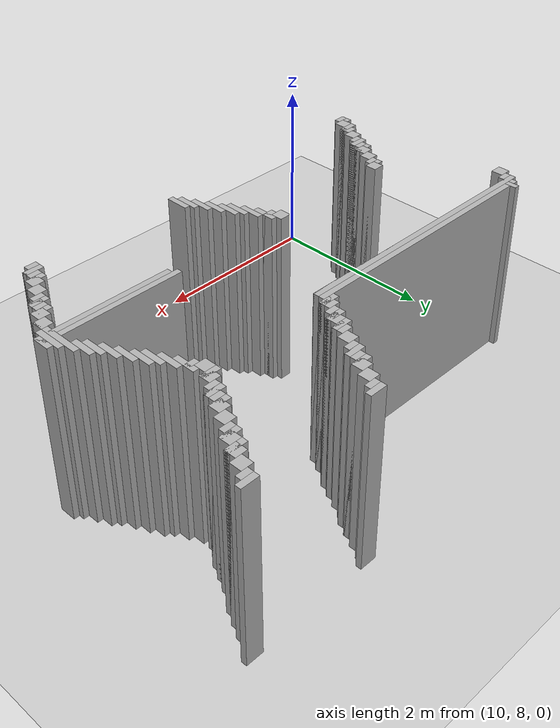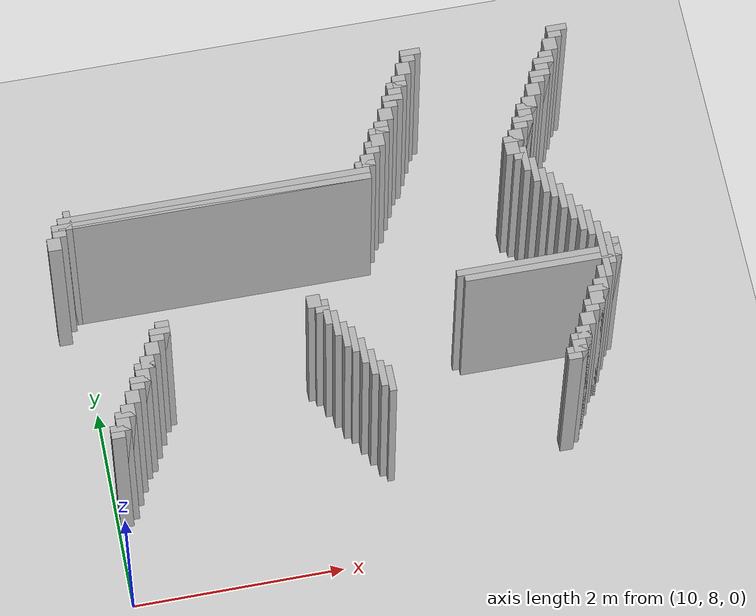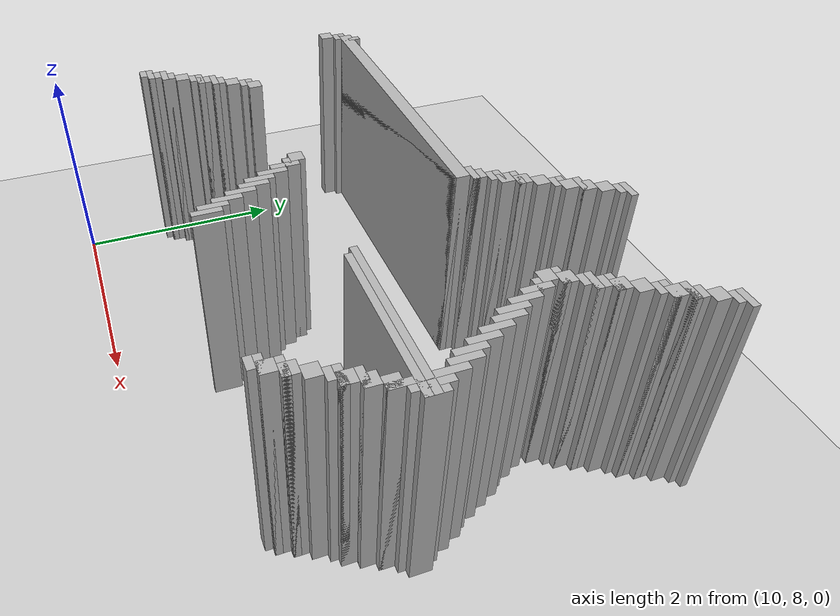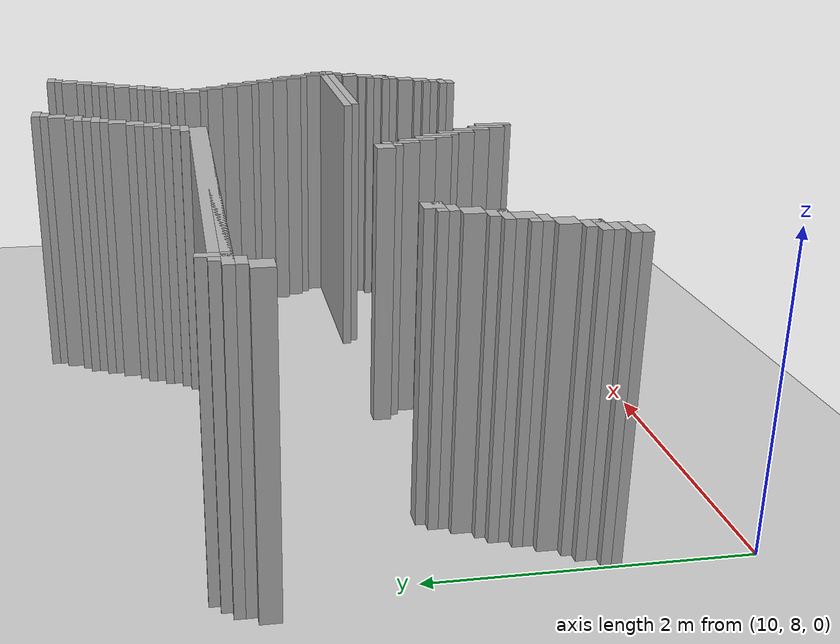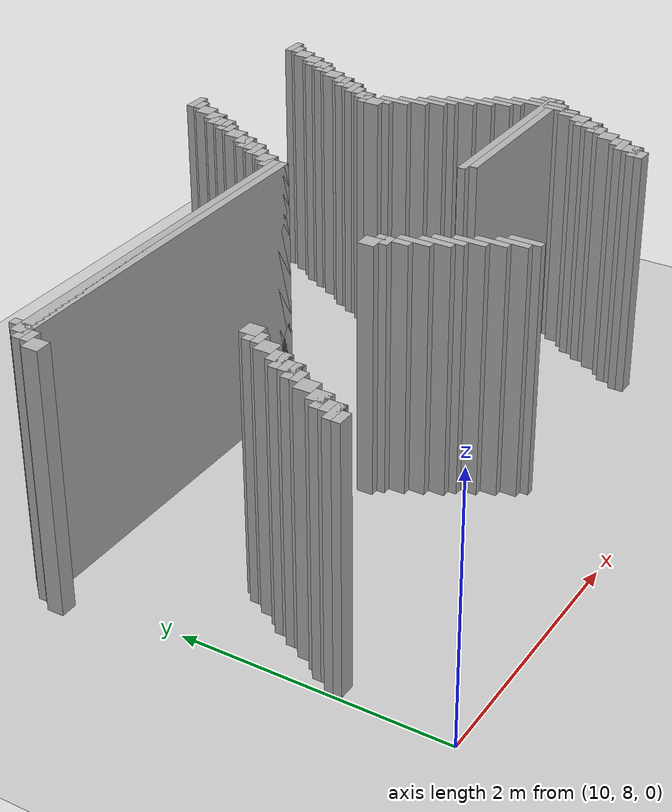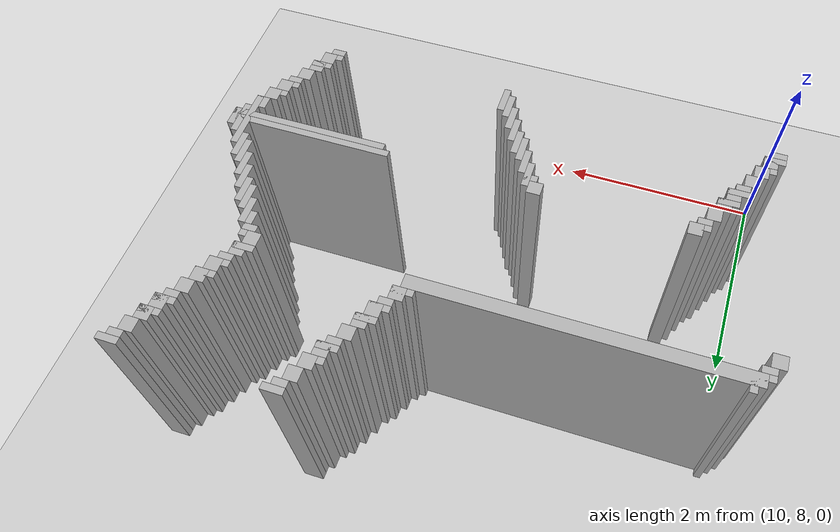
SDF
<sdf version="1.6">
 <world name="slam_world">
  <model name="ground_plane">
   <static>true</static>
   <link name="link">
    <collision name="collision">
     <geometry><plane><normal>0 0 1</normal><size>100 100</size></plane></geometry>
    </collision>
    <visual name="visual">
     <geometry><plane><normal>0 0 1</normal><size>100 100</size></plane></geometry>
     <material>
      <ambient>0.8 0.8 0.8 1</ambient>
      <diffuse>0.8 0.8 0.8 1</diffuse>
      <specular>0.8 0.8 0.8 1</specular>
     </material>
    </visual>
   </link>
  </model>
  <model name="wall_1170">
   <static>true</static>
   <pose>13.436170212765957 12.223404255319148 1.0 0 0 0</pose>
   <link name="link">
    <collision name="collision">
     <geometry><box><size>0.19148936170212766 0.06382978723404255 2.0</size></box></geometry>
    </collision>
    <visual name="visual">
     <geometry><box><size>0.19148936170212766 0.06382978723404255 2.0</size></box></geometry>
     <material><ambient>0.5 0.5 0.5 1</ambient><diffuse>0.7 0.7 0.7 1</diffuse></material>
    </visual>
   </link>
  </model>
  <model name="wall_1171">
   <static>true</static>
   <pose>14.840425531914892 12.223404255319148 1.0 0 0 0</pose>
   <link name="link">
    <collision name="collision">
     <geometry><box><size>0.19148936170212766 0.06382978723404255 2.0</size></box></geometry>
    </collision>
    <visual name="visual">
     <geometry><box><size>0.19148936170212766 0.06382978723404255 2.0</size></box></geometry>
     <material><ambient>0.5 0.5 0.5 1</ambient><diffuse>0.7 0.7 0.7 1</diffuse></material>
    </visual>
   </link>
  </model>
  <model name="wall_1176">
   <static>true</static>
   <pose>13.404255319148936 12.159574468085106 1.0 0 0 0</pose>
   <link name="link">
    <collision name="collision">
     <geometry><box><size>0.1276595744680851 0.06382978723404255 2.0</size></box></geometry>
    </collision>
    <visual name="visual">
     <geometry><box><size>0.1276595744680851 0.06382978723404255 2.0</size></box></geometry>
     <material><ambient>0.5 0.5 0.5 1</ambient><diffuse>0.7 0.7 0.7 1</diffuse></material>
    </visual>
   </link>
  </model>
  <model name="wall_1177">
   <static>true</static>
   <pose>14.808510638297872 12.159574468085106 1.0 0 0 0</pose>
   <link name="link">
    <collision name="collision">
     <geometry><box><size>0.1276595744680851 0.06382978723404255 2.0</size></box></geometry>
    </collision>
    <visual name="visual">
     <geometry><box><size>0.1276595744680851 0.06382978723404255 2.0</size></box></geometry>
     <material><ambient>0.5 0.5 0.5 1</ambient><diffuse>0.7 0.7 0.7 1</diffuse></material>
    </visual>
   </link>
  </model>
  <model name="wall_1185">
   <static>true</static>
   <pose>13.340425531914892 12.063829787234042 1.0 0 0 0</pose>
   <link name="link">
    <collision name="collision">
     <geometry><box><size>0.1276595744680851 0.1276595744680851 2.0</size></box></geometry>
    </collision>
    <visual name="visual">
     <geometry><box><size>0.1276595744680851 0.1276595744680851 2.0</size></box></geometry>
     <material><ambient>0.5 0.5 0.5 1</ambient><diffuse>0.7 0.7 0.7 1</diffuse></material>
    </visual>
   </link>
  </model>
  <model name="wall_1186">
   <static>true</static>
   <pose>14.744680851063828 12.063829787234042 1.0 0 0 0</pose>
   <link name="link">
    <collision name="collision">
     <geometry><box><size>0.1276595744680851 0.1276595744680851 2.0</size></box></geometry>
    </collision>
    <visual name="visual">
     <geometry><box><size>0.1276595744680851 0.1276595744680851 2.0</size></box></geometry>
     <material><ambient>0.5 0.5 0.5 1</ambient><diffuse>0.7 0.7 0.7 1</diffuse></material>
    </visual>
   </link>
  </model>
  <model name="wall_1194">
   <static>true</static>
   <pose>13.27659574468085 11.936170212765957 1.0 0 0 0</pose>
   <link name="link">
    <collision name="collision">
     <geometry><box><size>0.1276595744680851 0.1276595744680851 2.0</size></box></geometry>
    </collision>
    <visual name="visual">
     <geometry><box><size>0.1276595744680851 0.1276595744680851 2.0</size></box></geometry>
     <material><ambient>0.5 0.5 0.5 1</ambient><diffuse>0.7 0.7 0.7 1</diffuse></material>
    </visual>
   </link>
  </model>
  <model name="wall_1195">
   <static>true</static>
   <pose>14.680851063829786 11.936170212765957 1.0 0 0 0</pose>
   <link name="link">
    <collision name="collision">
     <geometry><box><size>0.1276595744680851 0.1276595744680851 2.0</size></box></geometry>
    </collision>
    <visual name="visual">
     <geometry><box><size>0.1276595744680851 0.1276595744680851 2.0</size></box></geometry>
     <material><ambient>0.5 0.5 0.5 1</ambient><diffuse>0.7 0.7 0.7 1</diffuse></material>
    </visual>
   </link>
  </model>
  <model name="wall_1203">
   <static>true</static>
   <pose>13.244680851063828 11.904255319148936 1.0 0 0 0</pose>
   <link name="link">
    <collision name="collision">
     <geometry><box><size>0.19148936170212766 0.06382978723404255 2.0</size></box></geometry>
    </collision>
    <visual name="visual">
     <geometry><box><size>0.19148936170212766 0.06382978723404255 2.0</size></box></geometry>
     <material><ambient>0.5 0.5 0.5 1</ambient><diffuse>0.7 0.7 0.7 1</diffuse></material>
    </visual>
   </link>
  </model>
  <model name="wall_1204">
   <static>true</static>
   <pose>14.648936170212766 11.904255319148936 1.0 0 0 0</pose>
   <link name="link">
    <collision name="collision">
     <geometry><box><size>0.19148936170212766 0.06382978723404255 2.0</size></box></geometry>
    </collision>
    <visual name="visual">
     <geometry><box><size>0.19148936170212766 0.06382978723404255 2.0</size></box></geometry>
     <material><ambient>0.5 0.5 0.5 1</ambient><diffuse>0.7 0.7 0.7 1</diffuse></material>
    </visual>
   </link>
  </model>
  <model name="wall_1208">
   <static>true</static>
   <pose>13.212765957446807 11.808510638297872 1.0 0 0 0</pose>
   <link name="link">
    <collision name="collision">
     <geometry><box><size>0.1276595744680851 0.1276595744680851 2.0</size></box></geometry>
    </collision>
    <visual name="visual">
     <geometry><box><size>0.1276595744680851 0.1276595744680851 2.0</size></box></geometry>
     <material><ambient>0.5 0.5 0.5 1</ambient><diffuse>0.7 0.7 0.7 1</diffuse></material>
    </visual>
   </link>
  </model>
  <model name="wall_1209">
   <static>true</static>
   <pose>14.617021276595743 11.808510638297872 1.0 0 0 0</pose>
   <link name="link">
    <collision name="collision">
     <geometry><box><size>0.1276595744680851 0.1276595744680851 2.0</size></box></geometry>
    </collision>
    <visual name="visual">
     <geometry><box><size>0.1276595744680851 0.1276595744680851 2.0</size></box></geometry>
     <material><ambient>0.5 0.5 0.5 1</ambient><diffuse>0.7 0.7 0.7 1</diffuse></material>
    </visual>
   </link>
  </model>
  <model name="wall_1217">
   <static>true</static>
   <pose>13.180851063829786 11.77659574468085 1.0 0 0 0</pose>
   <link name="link">
    <collision name="collision">
     <geometry><box><size>0.19148936170212766 0.06382978723404255 2.0</size></box></geometry>
    </collision>
    <visual name="visual">
     <geometry><box><size>0.19148936170212766 0.06382978723404255 2.0</size></box></geometry>
     <material><ambient>0.5 0.5 0.5 1</ambient><diffuse>0.7 0.7 0.7 1</diffuse></material>
    </visual>
   </link>
  </model>
  <model name="wall_1218">
   <static>true</static>
   <pose>14.585106382978722 11.77659574468085 1.0 0 0 0</pose>
   <link name="link">
    <collision name="collision">
     <geometry><box><size>0.19148936170212766 0.06382978723404255 2.0</size></box></geometry>
    </collision>
    <visual name="visual">
     <geometry><box><size>0.19148936170212766 0.06382978723404255 2.0</size></box></geometry>
     <material><ambient>0.5 0.5 0.5 1</ambient><diffuse>0.7 0.7 0.7 1</diffuse></material>
    </visual>
   </link>
  </model>
  <model name="wall_1221">
   <static>true</static>
   <pose>13.148936170212766 11.712765957446807 1.0 0 0 0</pose>
   <link name="link">
    <collision name="collision">
     <geometry><box><size>0.1276595744680851 0.06382978723404255 2.0</size></box></geometry>
    </collision>
    <visual name="visual">
     <geometry><box><size>0.1276595744680851 0.06382978723404255 2.0</size></box></geometry>
     <material><ambient>0.5 0.5 0.5 1</ambient><diffuse>0.7 0.7 0.7 1</diffuse></material>
    </visual>
   </link>
  </model>
  <model name="wall_1222">
   <static>true</static>
   <pose>14.553191489361701 11.712765957446807 1.0 0 0 0</pose>
   <link name="link">
    <collision name="collision">
     <geometry><box><size>0.1276595744680851 0.06382978723404255 2.0</size></box></geometry>
    </collision>
    <visual name="visual">
     <geometry><box><size>0.1276595744680851 0.06382978723404255 2.0</size></box></geometry>
     <material><ambient>0.5 0.5 0.5 1</ambient><diffuse>0.7 0.7 0.7 1</diffuse></material>
    </visual>
   </link>
  </model>
  <model name="wall_1230">
   <static>true</static>
   <pose>13.085106382978722 11.617021276595743 1.0 0 0 0</pose>
   <link name="link">
    <collision name="collision">
     <geometry><box><size>0.1276595744680851 0.1276595744680851 2.0</size></box></geometry>
    </collision>
    <visual name="visual">
     <geometry><box><size>0.1276595744680851 0.1276595744680851 2.0</size></box></geometry>
     <material><ambient>0.5 0.5 0.5 1</ambient><diffuse>0.7 0.7 0.7 1</diffuse></material>
    </visual>
   </link>
  </model>
  <model name="wall_1231">
   <static>true</static>
   <pose>14.489361702127658 11.617021276595743 1.0 0 0 0</pose>
   <link name="link">
    <collision name="collision">
     <geometry><box><size>0.1276595744680851 0.1276595744680851 2.0</size></box></geometry>
    </collision>
    <visual name="visual">
     <geometry><box><size>0.1276595744680851 0.1276595744680851 2.0</size></box></geometry>
     <material><ambient>0.5 0.5 0.5 1</ambient><diffuse>0.7 0.7 0.7 1</diffuse></material>
    </visual>
   </link>
  </model>
  <model name="wall_1239">
   <static>true</static>
   <pose>13.02127659574468 11.489361702127658 1.0 0 0 0</pose>
   <link name="link">
    <collision name="collision">
     <geometry><box><size>0.1276595744680851 0.1276595744680851 2.0</size></box></geometry>
    </collision>
    <visual name="visual">
     <geometry><box><size>0.1276595744680851 0.1276595744680851 2.0</size></box></geometry>
     <material><ambient>0.5 0.5 0.5 1</ambient><diffuse>0.7 0.7 0.7 1</diffuse></material>
    </visual>
   </link>
  </model>
  <model name="wall_1240">
   <static>true</static>
   <pose>14.425531914893616 11.489361702127658 1.0 0 0 0</pose>
   <link name="link">
    <collision name="collision">
     <geometry><box><size>0.1276595744680851 0.1276595744680851 2.0</size></box></geometry>
    </collision>
    <visual name="visual">
     <geometry><box><size>0.1276595744680851 0.1276595744680851 2.0</size></box></geometry>
     <material><ambient>0.5 0.5 0.5 1</ambient><diffuse>0.7 0.7 0.7 1</diffuse></material>
    </visual>
   </link>
  </model>
  <model name="wall_1248">
   <static>true</static>
   <pose>12.989361702127658 11.457446808510637 1.0 0 0 0</pose>
   <link name="link">
    <collision name="collision">
     <geometry><box><size>0.19148936170212766 0.06382978723404255 2.0</size></box></geometry>
    </collision>
    <visual name="visual">
     <geometry><box><size>0.19148936170212766 0.06382978723404255 2.0</size></box></geometry>
     <material><ambient>0.5 0.5 0.5 1</ambient><diffuse>0.7 0.7 0.7 1</diffuse></material>
    </visual>
   </link>
  </model>
  <model name="wall_1249">
   <static>true</static>
   <pose>14.393617021276595 11.457446808510637 1.0 0 0 0</pose>
   <link name="link">
    <collision name="collision">
     <geometry><box><size>0.19148936170212766 0.06382978723404255 2.0</size></box></geometry>
    </collision>
    <visual name="visual">
     <geometry><box><size>0.19148936170212766 0.06382978723404255 2.0</size></box></geometry>
     <material><ambient>0.5 0.5 0.5 1</ambient><diffuse>0.7 0.7 0.7 1</diffuse></material>
    </visual>
   </link>
  </model>
  <model name="wall_1252">
   <static>true</static>
   <pose>12.957446808510637 11.361702127659573 1.0 0 0 0</pose>
   <link name="link">
    <collision name="collision">
     <geometry><box><size>0.1276595744680851 0.1276595744680851 2.0</size></box></geometry>
    </collision>
    <visual name="visual">
     <geometry><box><size>0.1276595744680851 0.1276595744680851 2.0</size></box></geometry>
     <material><ambient>0.5 0.5 0.5 1</ambient><diffuse>0.7 0.7 0.7 1</diffuse></material>
    </visual>
   </link>
  </model>
  <model name="wall_1253">
   <static>true</static>
   <pose>14.361702127659573 11.361702127659573 1.0 0 0 0</pose>
   <link name="link">
    <collision name="collision">
     <geometry><box><size>0.1276595744680851 0.1276595744680851 2.0</size></box></geometry>
    </collision>
    <visual name="visual">
     <geometry><box><size>0.1276595744680851 0.1276595744680851 2.0</size></box></geometry>
     <material><ambient>0.5 0.5 0.5 1</ambient><diffuse>0.7 0.7 0.7 1</diffuse></material>
    </visual>
   </link>
  </model>
  <model name="wall_1261">
   <static>true</static>
   <pose>12.925531914893616 11.329787234042552 1.0 0 0 0</pose>
   <link name="link">
    <collision name="collision">
     <geometry><box><size>0.19148936170212766 0.06382978723404255 2.0</size></box></geometry>
    </collision>
    <visual name="visual">
     <geometry><box><size>0.19148936170212766 0.06382978723404255 2.0</size></box></geometry>
     <material><ambient>0.5 0.5 0.5 1</ambient><diffuse>0.7 0.7 0.7 1</diffuse></material>
    </visual>
   </link>
  </model>
  <model name="wall_1262">
   <static>true</static>
   <pose>14.329787234042552 11.329787234042552 1.0 0 0 0</pose>
   <link name="link">
    <collision name="collision">
     <geometry><box><size>0.19148936170212766 0.06382978723404255 2.0</size></box></geometry>
    </collision>
    <visual name="visual">
     <geometry><box><size>0.19148936170212766 0.06382978723404255 2.0</size></box></geometry>
     <material><ambient>0.5 0.5 0.5 1</ambient><diffuse>0.7 0.7 0.7 1</diffuse></material>
    </visual>
   </link>
  </model>
  <model name="wall_1265">
   <static>true</static>
   <pose>12.893617021276595 11.26595744680851 1.0 0 0 0</pose>
   <link name="link">
    <collision name="collision">
     <geometry><box><size>0.1276595744680851 0.06382978723404255 2.0</size></box></geometry>
    </collision>
    <visual name="visual">
     <geometry><box><size>0.1276595744680851 0.06382978723404255 2.0</size></box></geometry>
     <material><ambient>0.5 0.5 0.5 1</ambient><diffuse>0.7 0.7 0.7 1</diffuse></material>
    </visual>
   </link>
  </model>
  <model name="wall_1266">
   <static>true</static>
   <pose>14.297872340425531 11.26595744680851 1.0 0 0 0</pose>
   <link name="link">
    <collision name="collision">
     <geometry><box><size>0.1276595744680851 0.06382978723404255 2.0</size></box></geometry>
    </collision>
    <visual name="visual">
     <geometry><box><size>0.1276595744680851 0.06382978723404255 2.0</size></box></geometry>
     <material><ambient>0.5 0.5 0.5 1</ambient><diffuse>0.7 0.7 0.7 1</diffuse></material>
    </visual>
   </link>
  </model>
  <model name="wall_1273">
   <static>true</static>
   <pose>12.829787234042552 11.170212765957446 1.0 0 0 0</pose>
   <link name="link">
    <collision name="collision">
     <geometry><box><size>0.1276595744680851 0.1276595744680851 2.0</size></box></geometry>
    </collision>
    <visual name="visual">
     <geometry><box><size>0.1276595744680851 0.1276595744680851 2.0</size></box></geometry>
     <material><ambient>0.5 0.5 0.5 1</ambient><diffuse>0.7 0.7 0.7 1</diffuse></material>
    </visual>
   </link>
  </model>
  <model name="wall_1274">
   <static>true</static>
   <pose>14.234042553191488 11.170212765957446 1.0 0 0 0</pose>
   <link name="link">
    <collision name="collision">
     <geometry><box><size>0.1276595744680851 0.1276595744680851 2.0</size></box></geometry>
    </collision>
    <visual name="visual">
     <geometry><box><size>0.1276595744680851 0.1276595744680851 2.0</size></box></geometry>
     <material><ambient>0.5 0.5 0.5 1</ambient><diffuse>0.7 0.7 0.7 1</diffuse></material>
    </visual>
   </link>
  </model>
  <model name="wall_1280">
   <static>true</static>
   <pose>9.989361702127658 11.074468085106382 1.0 0 0 0</pose>
   <link name="link">
    <collision name="collision">
     <geometry><box><size>0.06382978723404255 0.19148936170212766 2.0</size></box></geometry>
    </collision>
    <visual name="visual">
     <geometry><box><size>0.06382978723404255 0.19148936170212766 2.0</size></box></geometry>
     <material><ambient>0.5 0.5 0.5 1</ambient><diffuse>0.7 0.7 0.7 1</diffuse></material>
    </visual>
   </link>
  </model>
  <model name="wall_1281">
   <static>true</static>
   <pose>12.797872340425531 11.138297872340425 1.0 0 0 0</pose>
   <link name="link">
    <collision name="collision">
     <geometry><box><size>0.19148936170212766 0.06382978723404255 2.0</size></box></geometry>
    </collision>
    <visual name="visual">
     <geometry><box><size>0.19148936170212766 0.06382978723404255 2.0</size></box></geometry>
     <material><ambient>0.5 0.5 0.5 1</ambient><diffuse>0.7 0.7 0.7 1</diffuse></material>
    </visual>
   </link>
  </model>
  <model name="wall_1282">
   <static>true</static>
   <pose>14.202127659574467 11.138297872340425 1.0 0 0 0</pose>
   <link name="link">
    <collision name="collision">
     <geometry><box><size>0.19148936170212766 0.06382978723404255 2.0</size></box></geometry>
    </collision>
    <visual name="visual">
     <geometry><box><size>0.19148936170212766 0.06382978723404255 2.0</size></box></geometry>
     <material><ambient>0.5 0.5 0.5 1</ambient><diffuse>0.7 0.7 0.7 1</diffuse></material>
    </visual>
   </link>
  </model>
  <model name="wall_1286">
   <static>true</static>
   <pose>11.361702127659573 11.042553191489361 1.0 0 0 0</pose>
   <link name="link">
    <collision name="collision">
     <geometry><box><size>2.936170212765957 0.1276595744680851 2.0</size></box></geometry>
    </collision>
    <visual name="visual">
     <geometry><box><size>2.936170212765957 0.1276595744680851 2.0</size></box></geometry>
     <material><ambient>0.5 0.5 0.5 1</ambient><diffuse>0.7 0.7 0.7 1</diffuse></material>
    </visual>
   </link>
  </model>
  <model name="wall_1287">
   <static>true</static>
   <pose>14.170212765957446 11.042553191489361 1.0 0 0 0</pose>
   <link name="link">
    <collision name="collision">
     <geometry><box><size>0.1276595744680851 0.1276595744680851 2.0</size></box></geometry>
    </collision>
    <visual name="visual">
     <geometry><box><size>0.1276595744680851 0.1276595744680851 2.0</size></box></geometry>
     <material><ambient>0.5 0.5 0.5 1</ambient><diffuse>0.7 0.7 0.7 1</diffuse></material>
    </visual>
   </link>
  </model>
  <model name="wall_1291">
   <static>true</static>
   <pose>11.329787234042552 11.01063829787234 1.0 0 0 0</pose>
   <link name="link">
    <collision name="collision">
     <geometry><box><size>2.9999999999999996 0.06382978723404255 2.0</size></box></geometry>
    </collision>
    <visual name="visual">
     <geometry><box><size>2.9999999999999996 0.06382978723404255 2.0</size></box></geometry>
     <material><ambient>0.5 0.5 0.5 1</ambient><diffuse>0.7 0.7 0.7 1</diffuse></material>
    </visual>
   </link>
  </model>
  <model name="wall_1292">
   <static>true</static>
   <pose>14.265957446808509 10.914893617021276 1.0 0 0 0</pose>
   <link name="link">
    <collision name="collision">
     <geometry><box><size>0.06382978723404255 0.2553191489361702 2.0</size></box></geometry>
    </collision>
    <visual name="visual">
     <geometry><box><size>0.06382978723404255 0.2553191489361702 2.0</size></box></geometry>
     <material><ambient>0.5 0.5 0.5 1</ambient><diffuse>0.7 0.7 0.7 1</diffuse></material>
    </visual>
   </link>
  </model>
  <model name="wall_1296">
   <static>true</static>
   <pose>9.893617021276595 10.946808510638297 1.0 0 0 0</pose>
   <link name="link">
    <collision name="collision">
     <geometry><box><size>0.1276595744680851 0.06382978723404255 2.0</size></box></geometry>
    </collision>
    <visual name="visual">
     <geometry><box><size>0.1276595744680851 0.06382978723404255 2.0</size></box></geometry>
     <material><ambient>0.5 0.5 0.5 1</ambient><diffuse>0.7 0.7 0.7 1</diffuse></material>
    </visual>
   </link>
  </model>
  <model name="wall_1297">
   <static>true</static>
   <pose>14.234042553191488 10.946808510638297 1.0 0 0 0</pose>
   <link name="link">
    <collision name="collision">
     <geometry><box><size>0.1276595744680851 0.06382978723404255 2.0</size></box></geometry>
    </collision>
    <visual name="visual">
     <geometry><box><size>0.1276595744680851 0.06382978723404255 2.0</size></box></geometry>
     <material><ambient>0.5 0.5 0.5 1</ambient><diffuse>0.7 0.7 0.7 1</diffuse></material>
    </visual>
   </link>
  </model>
  <model name="wall_1301">
   <static>true</static>
   <pose>9.829787234042552 10.851063829787233 1.0 0 0 0</pose>
   <link name="link">
    <collision name="collision">
     <geometry><box><size>0.1276595744680851 0.1276595744680851 2.0</size></box></geometry>
    </collision>
    <visual name="visual">
     <geometry><box><size>0.1276595744680851 0.1276595744680851 2.0</size></box></geometry>
     <material><ambient>0.5 0.5 0.5 1</ambient><diffuse>0.7 0.7 0.7 1</diffuse></material>
    </visual>
   </link>
  </model>
  <model name="wall_1302">
   <static>true</static>
   <pose>14.329787234042552 10.787234042553191 1.0 0 0 0</pose>
   <link name="link">
    <collision name="collision">
     <geometry><box><size>0.06382978723404255 0.2553191489361702 2.0</size></box></geometry>
    </collision>
    <visual name="visual">
     <geometry><box><size>0.06382978723404255 0.2553191489361702 2.0</size></box></geometry>
     <material><ambient>0.5 0.5 0.5 1</ambient><diffuse>0.7 0.7 0.7 1</diffuse></material>
    </visual>
   </link>
  </model>
  <model name="wall_1307">
   <static>true</static>
   <pose>14.393617021276595 10.659574468085106 1.0 0 0 0</pose>
   <link name="link">
    <collision name="collision">
     <geometry><box><size>0.06382978723404255 0.2553191489361702 2.0</size></box></geometry>
    </collision>
    <visual name="visual">
     <geometry><box><size>0.06382978723404255 0.2553191489361702 2.0</size></box></geometry>
     <material><ambient>0.5 0.5 0.5 1</ambient><diffuse>0.7 0.7 0.7 1</diffuse></material>
    </visual>
   </link>
  </model>
  <model name="wall_1312">
   <static>true</static>
   <pose>14.457446808510637 10.595744680851062 1.0 0 0 0</pose>
   <link name="link">
    <collision name="collision">
     <geometry><box><size>0.06382978723404255 0.2553191489361702 2.0</size></box></geometry>
    </collision>
    <visual name="visual">
     <geometry><box><size>0.06382978723404255 0.2553191489361702 2.0</size></box></geometry>
     <material><ambient>0.5 0.5 0.5 1</ambient><diffuse>0.7 0.7 0.7 1</diffuse></material>
    </visual>
   </link>
  </model>
  <model name="wall_1319">
   <static>true</static>
   <pose>14.52127659574468 10.468085106382977 1.0 0 0 0</pose>
   <link name="link">
    <collision name="collision">
     <geometry><box><size>0.06382978723404255 0.2553191489361702 2.0</size></box></geometry>
    </collision>
    <visual name="visual">
     <geometry><box><size>0.06382978723404255 0.2553191489361702 2.0</size></box></geometry>
     <material><ambient>0.5 0.5 0.5 1</ambient><diffuse>0.7 0.7 0.7 1</diffuse></material>
    </visual>
   </link>
  </model>
  <model name="wall_1326">
   <static>true</static>
   <pose>14.585106382978722 10.340425531914892 1.0 0 0 0</pose>
   <link name="link">
    <collision name="collision">
     <geometry><box><size>0.06382978723404255 0.2553191489361702 2.0</size></box></geometry>
    </collision>
    <visual name="visual">
     <geometry><box><size>0.06382978723404255 0.2553191489361702 2.0</size></box></geometry>
     <material><ambient>0.5 0.5 0.5 1</ambient><diffuse>0.7 0.7 0.7 1</diffuse></material>
    </visual>
   </link>
  </model>
  <model name="wall_1331">
   <static>true</static>
   <pose>14.648936170212766 10.212765957446807 1.0 0 0 0</pose>
   <link name="link">
    <collision name="collision">
     <geometry><box><size>0.06382978723404255 0.2553191489361702 2.0</size></box></geometry>
    </collision>
    <visual name="visual">
     <geometry><box><size>0.06382978723404255 0.2553191489361702 2.0</size></box></geometry>
     <material><ambient>0.5 0.5 0.5 1</ambient><diffuse>0.7 0.7 0.7 1</diffuse></material>
    </visual>
   </link>
  </model>
  <model name="wall_1336">
   <static>true</static>
   <pose>14.712765957446807 10.148936170212766 1.0 0 0 0</pose>
   <link name="link">
    <collision name="collision">
     <geometry><box><size>0.06382978723404255 0.2553191489361702 2.0</size></box></geometry>
    </collision>
    <visual name="visual">
     <geometry><box><size>0.06382978723404255 0.2553191489361702 2.0</size></box></geometry>
     <material><ambient>0.5 0.5 0.5 1</ambient><diffuse>0.7 0.7 0.7 1</diffuse></material>
    </visual>
   </link>
  </model>
  <model name="wall_1343">
   <static>true</static>
   <pose>14.77659574468085 9.861702127659573 1.0 0 0 0</pose>
   <link name="link">
    <collision name="collision">
     <geometry><box><size>0.06382978723404255 0.5744680851063829 2.0</size></box></geometry>
    </collision>
    <visual name="visual">
     <geometry><box><size>0.06382978723404255 0.5744680851063829 2.0</size></box></geometry>
     <material><ambient>0.5 0.5 0.5 1</ambient><diffuse>0.7 0.7 0.7 1</diffuse></material>
    </visual>
   </link>
  </model>
  <model name="wall_1349">
   <static>true</static>
   <pose>14.840425531914892 9.861702127659573 1.0 0 0 0</pose>
   <link name="link">
    <collision name="collision">
     <geometry><box><size>0.06382978723404255 0.3191489361702127 2.0</size></box></geometry>
    </collision>
    <visual name="visual">
     <geometry><box><size>0.06382978723404255 0.3191489361702127 2.0</size></box></geometry>
     <material><ambient>0.5 0.5 0.5 1</ambient><diffuse>0.7 0.7 0.7 1</diffuse></material>
    </visual>
   </link>
  </model>
  <model name="wall_1353">
   <static>true</static>
   <pose>14.904255319148936 9.861702127659573 1.0 0 0 0</pose>
   <link name="link">
    <collision name="collision">
     <geometry><box><size>0.06382978723404255 0.19148936170212766 2.0</size></box></geometry>
    </collision>
    <visual name="visual">
     <geometry><box><size>0.06382978723404255 0.19148936170212766 2.0</size></box></geometry>
     <material><ambient>0.5 0.5 0.5 1</ambient><diffuse>0.7 0.7 0.7 1</diffuse></material>
    </visual>
   </link>
  </model>
  <model name="wall_1359">
   <static>true</static>
   <pose>10.659574468085106 9.829787234042552 1.0 0 0 0</pose>
   <link name="link">
    <collision name="collision">
     <geometry><box><size>0.1276595744680851 0.1276595744680851 2.0</size></box></geometry>
    </collision>
    <visual name="visual">
     <geometry><box><size>0.1276595744680851 0.1276595744680851 2.0</size></box></geometry>
     <material><ambient>0.5 0.5 0.5 1</ambient><diffuse>0.7 0.7 0.7 1</diffuse></material>
    </visual>
   </link>
  </model>
  <model name="wall_1360">
   <static>true</static>
   <pose>12.063829787234042 9.829787234042552 1.0 0 0 0</pose>
   <link name="link">
    <collision name="collision">
     <geometry><box><size>0.1276595744680851 0.1276595744680851 2.0</size></box></geometry>
    </collision>
    <visual name="visual">
     <geometry><box><size>0.1276595744680851 0.1276595744680851 2.0</size></box></geometry>
     <material><ambient>0.5 0.5 0.5 1</ambient><diffuse>0.7 0.7 0.7 1</diffuse></material>
    </visual>
   </link>
  </model>
  <model name="wall_1361">
   <static>true</static>
   <pose>14.170212765957446 9.861702127659573 1.0 0 0 0</pose>
   <link name="link">
    <collision name="collision">
     <geometry><box><size>1.5319148936170213 0.06382978723404255 2.0</size></box></geometry>
    </collision>
    <visual name="visual">
     <geometry><box><size>1.5319148936170213 0.06382978723404255 2.0</size></box></geometry>
     <material><ambient>0.5 0.5 0.5 1</ambient><diffuse>0.7 0.7 0.7 1</diffuse></material>
    </visual>
   </link>
  </model>
  <model name="wall_1368">
   <static>true</static>
   <pose>10.627659574468085 9.797872340425531 1.0 0 0 0</pose>
   <link name="link">
    <collision name="collision">
     <geometry><box><size>0.19148936170212766 0.06382978723404255 2.0</size></box></geometry>
    </collision>
    <visual name="visual">
     <geometry><box><size>0.19148936170212766 0.06382978723404255 2.0</size></box></geometry>
     <material><ambient>0.5 0.5 0.5 1</ambient><diffuse>0.7 0.7 0.7 1</diffuse></material>
    </visual>
   </link>
  </model>
  <model name="wall_1369">
   <static>true</static>
   <pose>12.159574468085106 9.702127659574467 1.0 0 0 0</pose>
   <link name="link">
    <collision name="collision">
     <geometry><box><size>0.06382978723404255 0.2553191489361702 2.0</size></box></geometry>
    </collision>
    <visual name="visual">
     <geometry><box><size>0.06382978723404255 0.2553191489361702 2.0</size></box></geometry>
     <material><ambient>0.5 0.5 0.5 1</ambient><diffuse>0.7 0.7 0.7 1</diffuse></material>
    </visual>
   </link>
  </model>
  <model name="wall_1370">
   <static>true</static>
   <pose>14.202127659574467 9.797872340425531 1.0 0 0 0</pose>
   <link name="link">
    <collision name="collision">
     <geometry><box><size>1.4680851063829785 0.06382978723404255 2.0</size></box></geometry>
    </collision>
    <visual name="visual">
     <geometry><box><size>1.4680851063829785 0.06382978723404255 2.0</size></box></geometry>
     <material><ambient>0.5 0.5 0.5 1</ambient><diffuse>0.7 0.7 0.7 1</diffuse></material>
    </visual>
   </link>
  </model>
  <model name="wall_1375">
   <static>true</static>
   <pose>10.595744680851062 9.734042553191488 1.0 0 0 0</pose>
   <link name="link">
    <collision name="collision">
     <geometry><box><size>0.1276595744680851 0.06382978723404255 2.0</size></box></geometry>
    </collision>
    <visual name="visual">
     <geometry><box><size>0.1276595744680851 0.06382978723404255 2.0</size></box></geometry>
     <material><ambient>0.5 0.5 0.5 1</ambient><diffuse>0.7 0.7 0.7 1</diffuse></material>
    </visual>
   </link>
  </model>
  <model name="wall_1376">
   <static>true</static>
   <pose>12.127659574468083 9.734042553191488 1.0 0 0 0</pose>
   <link name="link">
    <collision name="collision">
     <geometry><box><size>0.1276595744680851 0.06382978723404255 2.0</size></box></geometry>
    </collision>
    <visual name="visual">
     <geometry><box><size>0.1276595744680851 0.06382978723404255 2.0</size></box></geometry>
     <material><ambient>0.5 0.5 0.5 1</ambient><diffuse>0.7 0.7 0.7 1</diffuse></material>
    </visual>
   </link>
  </model>
  <model name="wall_1385">
   <static>true</static>
   <pose>10.53191489361702 9.638297872340425 1.0 0 0 0</pose>
   <link name="link">
    <collision name="collision">
     <geometry><box><size>0.1276595744680851 0.1276595744680851 2.0</size></box></geometry>
    </collision>
    <visual name="visual">
     <geometry><box><size>0.1276595744680851 0.1276595744680851 2.0</size></box></geometry>
     <material><ambient>0.5 0.5 0.5 1</ambient><diffuse>0.7 0.7 0.7 1</diffuse></material>
    </visual>
   </link>
  </model>
  <model name="wall_1386">
   <static>true</static>
   <pose>12.223404255319148 9.574468085106382 1.0 0 0 0</pose>
   <link name="link">
    <collision name="collision">
     <geometry><box><size>0.06382978723404255 0.2553191489361702 2.0</size></box></geometry>
    </collision>
    <visual name="visual">
     <geometry><box><size>0.06382978723404255 0.2553191489361702 2.0</size></box></geometry>
     <material><ambient>0.5 0.5 0.5 1</ambient><diffuse>0.7 0.7 0.7 1</diffuse></material>
    </visual>
   </link>
  </model>
  <model name="wall_1387">
   <static>true</static>
   <pose>14.744680851063828 9.638297872340425 1.0 0 0 0</pose>
   <link name="link">
    <collision name="collision">
     <geometry><box><size>0.1276595744680851 0.1276595744680851 2.0</size></box></geometry>
    </collision>
    <visual name="visual">
     <geometry><box><size>0.1276595744680851 0.1276595744680851 2.0</size></box></geometry>
     <material><ambient>0.5 0.5 0.5 1</ambient><diffuse>0.7 0.7 0.7 1</diffuse></material>
    </visual>
   </link>
  </model>
  <model name="wall_1396">
   <static>true</static>
   <pose>10.468085106382977 9.51063829787234 1.0 0 0 0</pose>
   <link name="link">
    <collision name="collision">
     <geometry><box><size>0.1276595744680851 0.1276595744680851 2.0</size></box></geometry>
    </collision>
    <visual name="visual">
     <geometry><box><size>0.1276595744680851 0.1276595744680851 2.0</size></box></geometry>
     <material><ambient>0.5 0.5 0.5 1</ambient><diffuse>0.7 0.7 0.7 1</diffuse></material>
    </visual>
   </link>
  </model>
  <model name="wall_1397">
   <static>true</static>
   <pose>12.287234042553191 9.446808510638297 1.0 0 0 0</pose>
   <link name="link">
    <collision name="collision">
     <geometry><box><size>0.06382978723404255 0.2553191489361702 2.0</size></box></geometry>
    </collision>
    <visual name="visual">
     <geometry><box><size>0.06382978723404255 0.2553191489361702 2.0</size></box></geometry>
     <material><ambient>0.5 0.5 0.5 1</ambient><diffuse>0.7 0.7 0.7 1</diffuse></material>
    </visual>
   </link>
  </model>
  <model name="wall_1398">
   <static>true</static>
   <pose>14.680851063829786 9.51063829787234 1.0 0 0 0</pose>
   <link name="link">
    <collision name="collision">
     <geometry><box><size>0.1276595744680851 0.1276595744680851 2.0</size></box></geometry>
    </collision>
    <visual name="visual">
     <geometry><box><size>0.1276595744680851 0.1276595744680851 2.0</size></box></geometry>
     <material><ambient>0.5 0.5 0.5 1</ambient><diffuse>0.7 0.7 0.7 1</diffuse></material>
    </visual>
   </link>
  </model>
  <model name="wall_1407">
   <static>true</static>
   <pose>10.436170212765957 9.478723404255318 1.0 0 0 0</pose>
   <link name="link">
    <collision name="collision">
     <geometry><box><size>0.19148936170212766 0.06382978723404255 2.0</size></box></geometry>
    </collision>
    <visual name="visual">
     <geometry><box><size>0.19148936170212766 0.06382978723404255 2.0</size></box></geometry>
     <material><ambient>0.5 0.5 0.5 1</ambient><diffuse>0.7 0.7 0.7 1</diffuse></material>
    </visual>
   </link>
  </model>
  <model name="wall_1408">
   <static>true</static>
   <pose>12.351063829787233 9.382978723404255 1.0 0 0 0</pose>
   <link name="link">
    <collision name="collision">
     <geometry><box><size>0.06382978723404255 0.2553191489361702 2.0</size></box></geometry>
    </collision>
    <visual name="visual">
     <geometry><box><size>0.06382978723404255 0.2553191489361702 2.0</size></box></geometry>
     <material><ambient>0.5 0.5 0.5 1</ambient><diffuse>0.7 0.7 0.7 1</diffuse></material>
    </visual>
   </link>
  </model>
  <model name="wall_1409">
   <static>true</static>
   <pose>14.648936170212766 9.478723404255318 1.0 0 0 0</pose>
   <link name="link">
    <collision name="collision">
     <geometry><box><size>0.19148936170212766 0.06382978723404255 2.0</size></box></geometry>
    </collision>
    <visual name="visual">
     <geometry><box><size>0.19148936170212766 0.06382978723404255 2.0</size></box></geometry>
     <material><ambient>0.5 0.5 0.5 1</ambient><diffuse>0.7 0.7 0.7 1</diffuse></material>
    </visual>
   </link>
  </model>
  <model name="wall_1416">
   <static>true</static>
   <pose>10.404255319148936 9.382978723404255 1.0 0 0 0</pose>
   <link name="link">
    <collision name="collision">
     <geometry><box><size>0.1276595744680851 0.1276595744680851 2.0</size></box></geometry>
    </collision>
    <visual name="visual">
     <geometry><box><size>0.1276595744680851 0.1276595744680851 2.0</size></box></geometry>
     <material><ambient>0.5 0.5 0.5 1</ambient><diffuse>0.7 0.7 0.7 1</diffuse></material>
    </visual>
   </link>
  </model>
  <model name="wall_1417">
   <static>true</static>
   <pose>14.617021276595743 9.382978723404255 1.0 0 0 0</pose>
   <link name="link">
    <collision name="collision">
     <geometry><box><size>0.1276595744680851 0.1276595744680851 2.0</size></box></geometry>
    </collision>
    <visual name="visual">
     <geometry><box><size>0.1276595744680851 0.1276595744680851 2.0</size></box></geometry>
     <material><ambient>0.5 0.5 0.5 1</ambient><diffuse>0.7 0.7 0.7 1</diffuse></material>
    </visual>
   </link>
  </model>
  <model name="wall_1426">
   <static>true</static>
   <pose>10.372340425531915 9.351063829787233 1.0 0 0 0</pose>
   <link name="link">
    <collision name="collision">
     <geometry><box><size>0.19148936170212766 0.06382978723404255 2.0</size></box></geometry>
    </collision>
    <visual name="visual">
     <geometry><box><size>0.19148936170212766 0.06382978723404255 2.0</size></box></geometry>
     <material><ambient>0.5 0.5 0.5 1</ambient><diffuse>0.7 0.7 0.7 1</diffuse></material>
    </visual>
   </link>
  </model>
  <model name="wall_1427">
   <static>true</static>
   <pose>12.414893617021276 9.25531914893617 1.0 0 0 0</pose>
   <link name="link">
    <collision name="collision">
     <geometry><box><size>0.06382978723404255 0.2553191489361702 2.0</size></box></geometry>
    </collision>
    <visual name="visual">
     <geometry><box><size>0.06382978723404255 0.2553191489361702 2.0</size></box></geometry>
     <material><ambient>0.5 0.5 0.5 1</ambient><diffuse>0.7 0.7 0.7 1</diffuse></material>
    </visual>
   </link>
  </model>
  <model name="wall_1428">
   <static>true</static>
   <pose>14.585106382978722 9.351063829787233 1.0 0 0 0</pose>
   <link name="link">
    <collision name="collision">
     <geometry><box><size>0.19148936170212766 0.06382978723404255 2.0</size></box></geometry>
    </collision>
    <visual name="visual">
     <geometry><box><size>0.19148936170212766 0.06382978723404255 2.0</size></box></geometry>
     <material><ambient>0.5 0.5 0.5 1</ambient><diffuse>0.7 0.7 0.7 1</diffuse></material>
    </visual>
   </link>
  </model>
  <model name="wall_1433">
   <static>true</static>
   <pose>10.340425531914892 9.287234042553191 1.0 0 0 0</pose>
   <link name="link">
    <collision name="collision">
     <geometry><box><size>0.1276595744680851 0.06382978723404255 2.0</size></box></geometry>
    </collision>
    <visual name="visual">
     <geometry><box><size>0.1276595744680851 0.06382978723404255 2.0</size></box></geometry>
     <material><ambient>0.5 0.5 0.5 1</ambient><diffuse>0.7 0.7 0.7 1</diffuse></material>
    </visual>
   </link>
  </model>
  <model name="wall_1434">
   <static>true</static>
   <pose>14.553191489361701 9.287234042553191 1.0 0 0 0</pose>
   <link name="link">
    <collision name="collision">
     <geometry><box><size>0.1276595744680851 0.06382978723404255 2.0</size></box></geometry>
    </collision>
    <visual name="visual">
     <geometry><box><size>0.1276595744680851 0.06382978723404255 2.0</size></box></geometry>
     <material><ambient>0.5 0.5 0.5 1</ambient><diffuse>0.7 0.7 0.7 1</diffuse></material>
    </visual>
   </link>
  </model>
  <model name="wall_1443">
   <static>true</static>
   <pose>10.27659574468085 9.191489361702127 1.0 0 0 0</pose>
   <link name="link">
    <collision name="collision">
     <geometry><box><size>0.1276595744680851 0.1276595744680851 2.0</size></box></geometry>
    </collision>
    <visual name="visual">
     <geometry><box><size>0.1276595744680851 0.1276595744680851 2.0</size></box></geometry>
     <material><ambient>0.5 0.5 0.5 1</ambient><diffuse>0.7 0.7 0.7 1</diffuse></material>
    </visual>
   </link>
  </model>
  <model name="wall_1444">
   <static>true</static>
   <pose>12.478723404255318 9.127659574468085 1.0 0 0 0</pose>
   <link name="link">
    <collision name="collision">
     <geometry><box><size>0.06382978723404255 0.2553191489361702 2.0</size></box></geometry>
    </collision>
    <visual name="visual">
     <geometry><box><size>0.06382978723404255 0.2553191489361702 2.0</size></box></geometry>
     <material><ambient>0.5 0.5 0.5 1</ambient><diffuse>0.7 0.7 0.7 1</diffuse></material>
    </visual>
   </link>
  </model>
  <model name="wall_1445">
   <static>true</static>
   <pose>14.489361702127658 9.191489361702127 1.0 0 0 0</pose>
   <link name="link">
    <collision name="collision">
     <geometry><box><size>0.1276595744680851 0.1276595744680851 2.0</size></box></geometry>
    </collision>
    <visual name="visual">
     <geometry><box><size>0.1276595744680851 0.1276595744680851 2.0</size></box></geometry>
     <material><ambient>0.5 0.5 0.5 1</ambient><diffuse>0.7 0.7 0.7 1</diffuse></material>
    </visual>
   </link>
  </model>
  <model name="wall_1454">
   <static>true</static>
   <pose>10.212765957446807 9.063829787234042 1.0 0 0 0</pose>
   <link name="link">
    <collision name="collision">
     <geometry><box><size>0.1276595744680851 0.1276595744680851 2.0</size></box></geometry>
    </collision>
    <visual name="visual">
     <geometry><box><size>0.1276595744680851 0.1276595744680851 2.0</size></box></geometry>
     <material><ambient>0.5 0.5 0.5 1</ambient><diffuse>0.7 0.7 0.7 1</diffuse></material>
    </visual>
   </link>
  </model>
  <model name="wall_1455">
   <static>true</static>
   <pose>12.542553191489361 9.0 1.0 0 0 0</pose>
   <link name="link">
    <collision name="collision">
     <geometry><box><size>0.06382978723404255 0.2553191489361702 2.0</size></box></geometry>
    </collision>
    <visual name="visual">
     <geometry><box><size>0.06382978723404255 0.2553191489361702 2.0</size></box></geometry>
     <material><ambient>0.5 0.5 0.5 1</ambient><diffuse>0.7 0.7 0.7 1</diffuse></material>
    </visual>
   </link>
  </model>
  <model name="wall_1456">
   <static>true</static>
   <pose>14.425531914893616 9.063829787234042 1.0 0 0 0</pose>
   <link name="link">
    <collision name="collision">
     <geometry><box><size>0.1276595744680851 0.1276595744680851 2.0</size></box></geometry>
    </collision>
    <visual name="visual">
     <geometry><box><size>0.1276595744680851 0.1276595744680851 2.0</size></box></geometry>
     <material><ambient>0.5 0.5 0.5 1</ambient><diffuse>0.7 0.7 0.7 1</diffuse></material>
    </visual>
   </link>
  </model>
  <model name="wall_1465">
   <static>true</static>
   <pose>10.180851063829786 9.03191489361702 1.0 0 0 0</pose>
   <link name="link">
    <collision name="collision">
     <geometry><box><size>0.19148936170212766 0.06382978723404255 2.0</size></box></geometry>
    </collision>
    <visual name="visual">
     <geometry><box><size>0.19148936170212766 0.06382978723404255 2.0</size></box></geometry>
     <material><ambient>0.5 0.5 0.5 1</ambient><diffuse>0.7 0.7 0.7 1</diffuse></material>
    </visual>
   </link>
  </model>
  <model name="wall_1466">
   <static>true</static>
   <pose>12.606382978723403 8.936170212765957 1.0 0 0 0</pose>
   <link name="link">
    <collision name="collision">
     <geometry><box><size>0.06382978723404255 0.2553191489361702 2.0</size></box></geometry>
    </collision>
    <visual name="visual">
     <geometry><box><size>0.06382978723404255 0.2553191489361702 2.0</size></box></geometry>
     <material><ambient>0.5 0.5 0.5 1</ambient><diffuse>0.7 0.7 0.7 1</diffuse></material>
    </visual>
   </link>
  </model>
  <model name="wall_1467">
   <static>true</static>
   <pose>14.393617021276595 9.03191489361702 1.0 0 0 0</pose>
   <link name="link">
    <collision name="collision">
     <geometry><box><size>0.19148936170212766 0.06382978723404255 2.0</size></box></geometry>
    </collision>
    <visual name="visual">
     <geometry><box><size>0.19148936170212766 0.06382978723404255 2.0</size></box></geometry>
     <material><ambient>0.5 0.5 0.5 1</ambient><diffuse>0.7 0.7 0.7 1</diffuse></material>
    </visual>
   </link>
  </model>
  <model name="wall_1472">
   <static>true</static>
   <pose>10.148936170212766 8.936170212765957 1.0 0 0 0</pose>
   <link name="link">
    <collision name="collision">
     <geometry><box><size>0.1276595744680851 0.1276595744680851 2.0</size></box></geometry>
    </collision>
    <visual name="visual">
     <geometry><box><size>0.1276595744680851 0.1276595744680851 2.0</size></box></geometry>
     <material><ambient>0.5 0.5 0.5 1</ambient><diffuse>0.7 0.7 0.7 1</diffuse></material>
    </visual>
   </link>
  </model>
  <model name="wall_1473">
   <static>true</static>
   <pose>14.361702127659573 8.936170212765957 1.0 0 0 0</pose>
   <link name="link">
    <collision name="collision">
     <geometry><box><size>0.1276595744680851 0.1276595744680851 2.0</size></box></geometry>
    </collision>
    <visual name="visual">
     <geometry><box><size>0.1276595744680851 0.1276595744680851 2.0</size></box></geometry>
     <material><ambient>0.5 0.5 0.5 1</ambient><diffuse>0.7 0.7 0.7 1</diffuse></material>
    </visual>
   </link>
  </model>
  <model name="wall_1482">
   <static>true</static>
   <pose>10.117021276595743 8.904255319148936 1.0 0 0 0</pose>
   <link name="link">
    <collision name="collision">
     <geometry><box><size>0.19148936170212766 0.06382978723404255 2.0</size></box></geometry>
    </collision>
    <visual name="visual">
     <geometry><box><size>0.19148936170212766 0.06382978723404255 2.0</size></box></geometry>
     <material><ambient>0.5 0.5 0.5 1</ambient><diffuse>0.7 0.7 0.7 1</diffuse></material>
    </visual>
   </link>
  </model>
  <model name="wall_1484">
   <static>true</static>
   <pose>14.329787234042552 8.904255319148936 1.0 0 0 0</pose>
   <link name="link">
    <collision name="collision">
     <geometry><box><size>0.19148936170212766 0.06382978723404255 2.0</size></box></geometry>
    </collision>
    <visual name="visual">
     <geometry><box><size>0.19148936170212766 0.06382978723404255 2.0</size></box></geometry>
     <material><ambient>0.5 0.5 0.5 1</ambient><diffuse>0.7 0.7 0.7 1</diffuse></material>
    </visual>
   </link>
  </model>
  <model name="wall_1489">
   <static>true</static>
   <pose>10.085106382978722 8.840425531914892 1.0 0 0 0</pose>
   <link name="link">
    <collision name="collision">
     <geometry><box><size>0.1276595744680851 0.06382978723404255 2.0</size></box></geometry>
    </collision>
    <visual name="visual">
     <geometry><box><size>0.1276595744680851 0.06382978723404255 2.0</size></box></geometry>
     <material><ambient>0.5 0.5 0.5 1</ambient><diffuse>0.7 0.7 0.7 1</diffuse></material>
    </visual>
   </link>
  </model>
  <model name="wall_1490">
   <static>true</static>
   <pose>14.297872340425531 8.840425531914892 1.0 0 0 0</pose>
   <link name="link">
    <collision name="collision">
     <geometry><box><size>0.1276595744680851 0.06382978723404255 2.0</size></box></geometry>
    </collision>
    <visual name="visual">
     <geometry><box><size>0.1276595744680851 0.06382978723404255 2.0</size></box></geometry>
     <material><ambient>0.5 0.5 0.5 1</ambient><diffuse>0.7 0.7 0.7 1</diffuse></material>
    </visual>
   </link>
  </model>
 </world>
</sdf>
